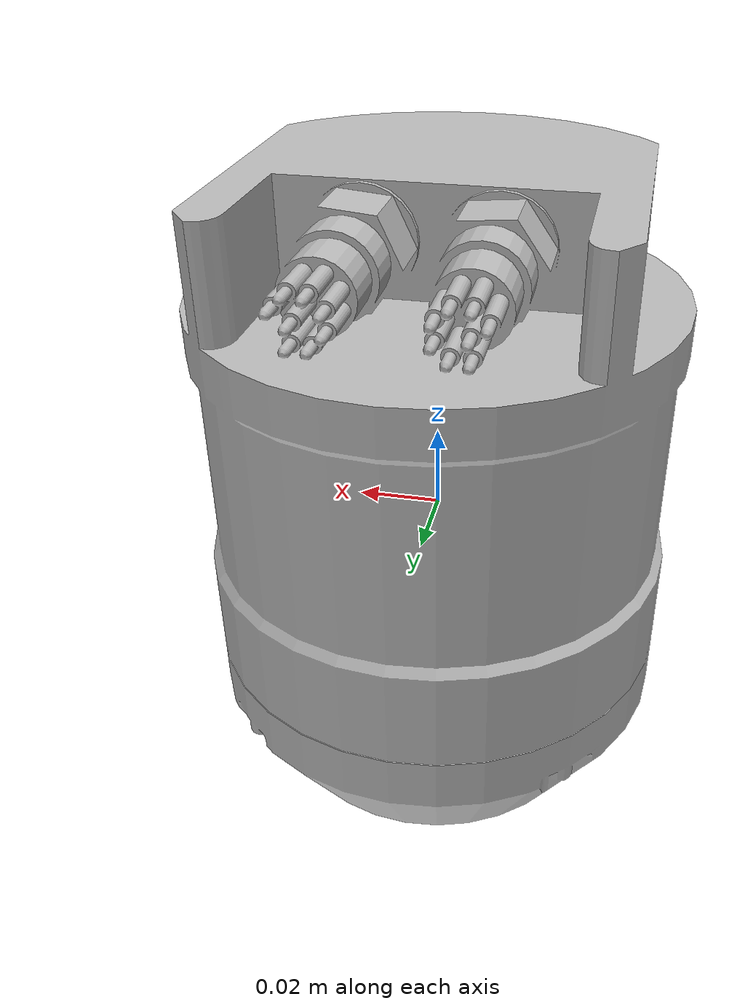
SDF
<?xml version="1.0"?>
<sdf version="1.7">
  <model name="nortek_dvl500_6000">
    <link name="dvl500_base_link">
      <pose>0 0 0 0 0 0</pose>
      <inertial>
        <pose>0 0 0 0 0 0</pose>
        <mass>3.1</mass>
        <inertia>
          <ixx>0.0330184</ixx>
          <ixy>0</ixy>
          <ixz>0</ixz>
          <iyy>0.0330184</iyy>
          <iyz>0</iyz>
          <izz>0.0255146</izz>
        </inertia>
      </inertial>
      <velocity_decay/>
      <gravity>1</gravity>
      <velocity_decay/>

      <sensor
        name="nortek_dvl500_6000" type="custom"
        gz:type="dvl">
        <pose>0 0 0 0 0 0</pose>
        <always_on>1</always_on>
        <update_rate>8</update_rate>
        <topic>/dvl/velocity</topic>
        <gz:dvl>
          <type>phased_array</type>
          <arrangement degrees="true">
            <beam id="1">
              <aperture>3</aperture>
              <rotation>-135</rotation>
              <tilt>25</tilt>
            </beam>
            <beam>
              <aperture>3</aperture>
              <rotation>135</rotation>
              <tilt>25</tilt>
            </beam>
            <beam>
              <aperture>3</aperture>
              <rotation>45</rotation>
              <tilt>25</tilt>
            </beam>
            <beam>
              <aperture>3</aperture>
              <rotation>-45</rotation>
              <tilt>25</tilt>
            </beam>
          </arrangement>
          <tracking>
            <water_mass_mode>
              <when>best</when>
              <water_velocity>
                <x>0.</x>
                <y>0.</y>
                <z>0.</z>
              </water_velocity>
              <boundaries>
                <near>10.</near>
                <far>100.</far>
              </boundaries>
              <bins>10</bins>
              <noise type="gaussian">
                <stddev>0.015</stddev>
              </noise>
              <visualize>true</visualize>
            </water_mass_mode>
            <bottom_mode>
              <when>best</when>
              <noise type="gaussian">
                <stddev>0.005</stddev>
              </noise>
              <visualize>true</visualize>
            </bottom_mode>
          </tracking>
          <maximum_range>200.</maximum_range>
          <minimum_range>0.3</minimum_range>
          <!-- ENU to FSD -->
          <reference_frame>0 0 0 3.14 0 -1.57</reference_frame>
        </gz:dvl>
      </sensor>

      <self_collide>0</self_collide>
      <enable_wind>0</enable_wind>
      <kinematic>0</kinematic>
      <visual name="dvl500_base_link_visual">
        <pose>0 0 0 0 0 3.14159</pose>
        <geometry>
          <mesh>
            <scale>1 1 1</scale>
            <!-- Mesh is actually for a Nortek DVL1000-4000m for now -->
            <uri>model://meshes/nortek_dvl500_6000/DVL500-6000m.dae</uri>
          </mesh>
        </geometry>
        <transparency>0</transparency>
        <cast_shadows>1</cast_shadows>
      </visual>
      <collision name="dvl500_base_link_fixed_joint_lump__dvl500_link_collision">
        <laser_retro>0</laser_retro>
        <max_contacts>10</max_contacts>
        <pose>0 0 0 3.14159 0 0</pose>
        <geometry>
          <cylinder>
            <radius>0.093</radius>
            <length>0.203</length>
          </cylinder>
        </geometry>
        <surface>
          <friction>
            <ode>
              <mu>1</mu>
              <mu2>1</mu2>
              <fdir1>0 0 0</fdir1>
              <slip1>0</slip1>
              <slip2>0</slip2>
            </ode>
            <torsional>
              <coefficient>1</coefficient>
              <patch_radius>0</patch_radius>
              <surface_radius>0</surface_radius>
              <use_patch_radius>1</use_patch_radius>
              <ode>
                <slip>0</slip>
              </ode>
            </torsional>
          </friction>
          <bounce>
            <restitution_coefficient>0</restitution_coefficient>
            <threshold>1e+06</threshold>
          </bounce>
          <contact>
            <collide_without_contact>0</collide_without_contact>
            <collide_without_contact_bitmask>1</collide_without_contact_bitmask>
            <collide_bitmask>1</collide_bitmask>
            <ode>
              <soft_cfm>0</soft_cfm>
              <soft_erp>0.2</soft_erp>
              <kp>1e+13</kp>
              <kd>1</kd>
              <max_vel>0.01</max_vel>
              <min_depth>0</min_depth>
            </ode>
            <bullet>
              <split_impulse>1</split_impulse>
              <split_impulse_penetration_threshold>-0.01</split_impulse_penetration_threshold>
              <soft_cfm>0</soft_cfm>
              <soft_erp>0.2</soft_erp>
              <kp>1e+13</kp>
              <kd>1</kd>
            </bullet>
          </contact>
        </surface>
      </collision>
    </link>
    <static>1</static>
    <allow_auto_disable>1</allow_auto_disable>

    <plugin
      filename="DVLBridge"
      name="dave_ros_gz_plugins::DVLBridge">
      <topic>/dvl/velocity</topic>
    </plugin>

  </model>
</sdf>
